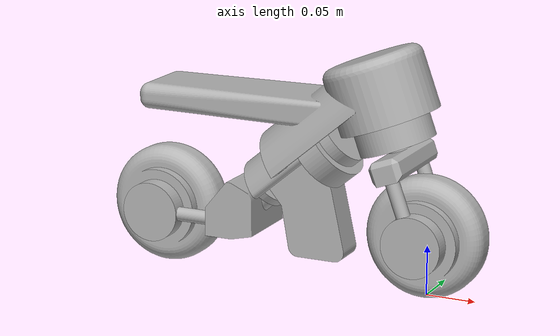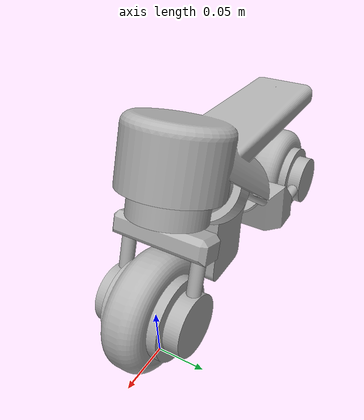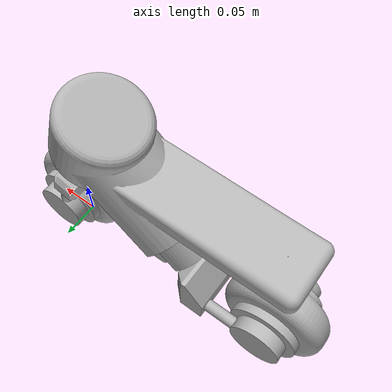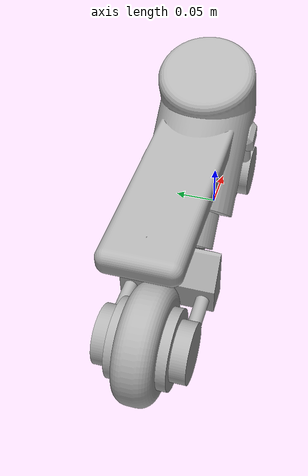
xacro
<?xml version="1.0" ?>
<robot name="motor_0419" xmlns:xacro="http://www.ros.org/wiki/xacro">

<xacro:include filename="$(find motor_0419_description)/urdf/materials.xacro" />
<xacro:include filename="$(find motor_0419_description)/urdf/motor_0419.trans" />
<xacro:include filename="$(find motor_0419_description)/urdf/motor_0419.gazebo" />
<link name="base_link">
  <inertial>
    <origin xyz="-0.2643804540847844 0.0 0.1883280566624717" rpy="0 0 0"/>
    <mass value="7.853981633974392e-07"/>
    <inertia ixx="0.0" iyy="0.0" izz="0.0" ixy="-0.0" iyz="0.0" ixz="0.0"/>
  </inertial>
  <visual>
    <origin xyz="0 0 0" rpy="0 0 0"/>
    <geometry>
      <mesh filename="package://motor_0419_description/meshes/base_link.stl" scale="0.001 0.001 0.001"/>
    </geometry>
    <material name="silver"/>
  </visual>
  <collision>
    <origin xyz="0 0 0" rpy="0 0 0"/>
    <geometry>
      <mesh filename="package://motor_0419_description/meshes/base_link.stl" scale="0.001 0.001 0.001"/>
    </geometry>
  </collision>
</link>

<link name="body_1">
  <inertial>
    <origin xyz="0.1471804534049348 -6.208601174446525e-05 -0.0006579735611396964" rpy="0 0 0"/>
    <mass value="0.3925093597966252"/>
    <inertia ixx="0.000434" iyy="0.002882" izz="0.002944" ixy="-1e-06" iyz="-1e-06" ixz="-0.000373"/>
  </inertial>
  <visual>
    <origin xyz="0.26438 -0.0 -0.187828" rpy="0 0 0"/>
    <geometry>
      <mesh filename="package://motor_0419_description/meshes/body_1.stl" scale="0.001 0.001 0.001"/>
    </geometry>
    <material name="silver"/>
  </visual>
  <collision>
    <origin xyz="0.26438 -0.0 -0.187828" rpy="0 0 0"/>
    <geometry>
      <mesh filename="package://motor_0419_description/meshes/body_1.stl" scale="0.001 0.001 0.001"/>
    </geometry>
  </collision>
</link>

<link name="motor_front_1">
  <inertial>
    <origin xyz="0.002738835734038929 0.0 -0.007526066318017166" rpy="0 0 0"/>
    <mass value="0.3948521329539542"/>
    <inertia ixx="0.00018" iyy="0.00017" izz="0.000247" ixy="0.0" iyz="-0.0" ixz="-2.8e-05"/>
  </inertial>
  <visual>
    <origin xyz="0.039613 -0.0 -0.168837" rpy="0 0 0"/>
    <geometry>
      <mesh filename="package://motor_0419_description/meshes/motor_front_1.stl" scale="0.001 0.001 0.001"/>
    </geometry>
    <material name="silver"/>
  </visual>
  <collision>
    <origin xyz="0.039613 -0.0 -0.168837" rpy="0 0 0"/>
    <geometry>
      <mesh filename="package://motor_0419_description/meshes/motor_front_1.stl" scale="0.001 0.001 0.001"/>
    </geometry>
  </collision>
</link>

<link name="Component15_1">
  <inertial>
    <origin xyz="0.0047462957723582964 0.0 -0.013040086657548577" rpy="0 0 0"/>
    <mass value="0.028707151993391324"/>
    <inertia ixx="2.3e-05" iyy="3e-06" izz="2.4e-05" ixy="-0.0" iyz="-0.0" ixz="-0.0"/>
  </inertial>
  <visual>
    <origin xyz="0.030721 -0.0 -0.144405" rpy="0 0 0"/>
    <geometry>
      <mesh filename="package://motor_0419_description/meshes/Component15_1.stl" scale="0.001 0.001 0.001"/>
    </geometry>
    <material name="silver"/>
  </visual>
  <collision>
    <origin xyz="0.030721 -0.0 -0.144405" rpy="0 0 0"/>
    <geometry>
      <mesh filename="package://motor_0419_description/meshes/Component15_1.stl" scale="0.001 0.001 0.001"/>
    </geometry>
  </collision>
</link>

<link name="Component7_1">
  <inertial>
    <origin xyz="0.012826244625287413 0.0 -0.035238526720528365" rpy="0 0 0"/>
    <mass value="0.0008835729338221301"/>
    <inertia ixx="0.0" iyy="0.0" izz="0.0" ixy="0.0" iyz="-0.0" ixz="0.0"/>
  </inertial>
  <visual>
    <origin xyz="0.025652 0.038 -0.130477" rpy="0 0 0"/>
    <geometry>
      <mesh filename="package://motor_0419_description/meshes/Component7_1.stl" scale="0.001 0.001 0.001"/>
    </geometry>
    <material name="silver"/>
  </visual>
  <collision>
    <origin xyz="0.025652 0.038 -0.130477" rpy="0 0 0"/>
    <geometry>
      <mesh filename="package://motor_0419_description/meshes/Component7_1.stl" scale="0.001 0.001 0.001"/>
    </geometry>
  </collision>
</link>

<link name="Component8_1">
  <inertial>
    <origin xyz="0.012826244625287411 -4.85722573273506e-17 -0.03523852672052845" rpy="0 0 0"/>
    <mass value="0.0008835729338221303"/>
    <inertia ixx="0.0" iyy="0.0" izz="0.0" ixy="0.0" iyz="-0.0" ixz="0.0"/>
  </inertial>
  <visual>
    <origin xyz="0.025652 -0.038 -0.130477" rpy="0 0 0"/>
    <geometry>
      <mesh filename="package://motor_0419_description/meshes/Component8_1.stl" scale="0.001 0.001 0.001"/>
    </geometry>
    <material name="silver"/>
  </visual>
  <collision>
    <origin xyz="0.025652 -0.038 -0.130477" rpy="0 0 0"/>
    <geometry>
      <mesh filename="package://motor_0419_description/meshes/Component8_1.stl" scale="0.001 0.001 0.001"/>
    </geometry>
  </collision>
</link>

<link name="Component21_1">
  <inertial>
    <origin xyz="0.0005748724370470563 6.938893903907228e-18 -0.001579449039853624" rpy="0 0 0"/>
    <mass value="0.01829359850162028"/>
    <inertia ixx="4e-06" iyy="8e-06" izz="5e-06" ixy="-0.0" iyz="0.0" ixz="-0.0"/>
  </inertial>
  <visual>
    <origin xyz="-0.0 0.038 -0.06" rpy="0 0 0"/>
    <geometry>
      <mesh filename="package://motor_0419_description/meshes/Component21_1.stl" scale="0.001 0.001 0.001"/>
    </geometry>
    <material name="silver"/>
  </visual>
  <collision>
    <origin xyz="-0.0 0.038 -0.06" rpy="0 0 0"/>
    <geometry>
      <mesh filename="package://motor_0419_description/meshes/Component21_1.stl" scale="0.001 0.001 0.001"/>
    </geometry>
  </collision>
</link>

<link name="Component22_1">
  <inertial>
    <origin xyz="0.0005748724370470528 6.938893903907228e-18 -0.001579449039853617" rpy="0 0 0"/>
    <mass value="0.018293598501620285"/>
    <inertia ixx="4e-06" iyy="8e-06" izz="5e-06" ixy="-0.0" iyz="0.0" ixz="-0.0"/>
  </inertial>
  <visual>
    <origin xyz="-0.0 -0.038 -0.06" rpy="0 0 0"/>
    <geometry>
      <mesh filename="package://motor_0419_description/meshes/Component22_1.stl" scale="0.001 0.001 0.001"/>
    </geometry>
    <material name="silver"/>
  </visual>
  <collision>
    <origin xyz="-0.0 -0.038 -0.06" rpy="0 0 0"/>
    <geometry>
      <mesh filename="package://motor_0419_description/meshes/Component22_1.stl" scale="0.001 0.001 0.001"/>
    </geometry>
  </collision>
</link>

<link name="front_wheel_1">
  <inertial>
    <origin xyz="-8.855704560963379e-18 -0.030000000000000002 1.3877787807814457e-17" rpy="0 0 0"/>
    <mass value="0.30810468964221666"/>
    <inertia ixx="0.000298" iyy="0.00046" izz="0.000298" ixy="-0.0" iyz="0.0" ixz="0.0"/>
  </inertial>
  <visual>
    <origin xyz="-0.0 -0.03 -0.06" rpy="0 0 0"/>
    <geometry>
      <mesh filename="package://motor_0419_description/meshes/front_wheel_1.stl" scale="0.001 0.001 0.001"/>
    </geometry>
    <material name="silver"/>
  </visual>
  <collision>
    <origin xyz="-0.0 -0.03 -0.06" rpy="0 0 0"/>
    <geometry>
      <mesh filename="package://motor_0419_description/meshes/front_wheel_1.stl" scale="0.001 0.001 0.001"/>
    </geometry>
  </collision>
</link>

<link name="weight_shell_1">
  <inertial>
    <origin xyz="-0.01833489996079446 0.041546025220520574 -0.001470528410080843" rpy="0 0 0"/>
    <mass value="0.03425604041375709"/>
    <inertia ixx="2.6e-05" iyy="1.9e-05" izz="2.5e-05" ixy="0.0" iyz="-0.0" ixz="-5e-06"/>
  </inertial>
  <visual>
    <origin xyz="0.138424 0.041546 -0.119052" rpy="0 0 0"/>
    <geometry>
      <mesh filename="package://motor_0419_description/meshes/weight_shell_1.stl" scale="0.001 0.001 0.001"/>
    </geometry>
    <material name="silver"/>
  </visual>
  <collision>
    <origin xyz="0.138424 0.041546 -0.119052" rpy="0 0 0"/>
    <geometry>
      <mesh filename="package://motor_0419_description/meshes/weight_shell_1.stl" scale="0.001 0.001 0.001"/>
    </geometry>
  </collision>
</link>

<link name="motor_back_1">
  <inertial>
    <origin xyz="0.012633058157315635 7.77390917334006e-18 0.01060057412634735" rpy="0 0 0"/>
    <mass value="0.39485213295395405"/>
    <inertia ixx="0.000221" iyy="0.00017" izz="0.000206" ixy="0.0" iyz="-0.0" ixz="4.3e-05"/>
  </inertial>
  <visual>
    <origin xyz="0.115865 -0.0 -0.127171" rpy="0 0 0"/>
    <geometry>
      <mesh filename="package://motor_0419_description/meshes/motor_back_1.stl" scale="0.001 0.001 0.001"/>
    </geometry>
    <material name="silver"/>
  </visual>
  <collision>
    <origin xyz="0.115865 -0.0 -0.127171" rpy="0 0 0"/>
    <geometry>
      <mesh filename="package://motor_0419_description/meshes/motor_back_1.stl" scale="0.001 0.001 0.001"/>
    </geometry>
  </collision>
</link>

<link name="weight_1">
  <inertial>
    <origin xyz="-0.0005088231683351985 1.830746664977666e-18 -0.057373356889244886" rpy="0 0 0"/>
    <mass value="1.2419723591084944"/>
    <inertia ixx="0.000958" iyy="0.001235" izz="0.000486" ixy="0.0" iyz="0.0" ixz="0.000144"/>
  </inertial>
  <visual>
    <origin xyz="0.117014 -0.0 -0.126207" rpy="0 0 0"/>
    <geometry>
      <mesh filename="package://motor_0419_description/meshes/weight_1.stl" scale="0.001 0.001 0.001"/>
    </geometry>
    <material name="silver"/>
  </visual>
  <collision>
    <origin xyz="0.117014 -0.0 -0.126207" rpy="0 0 0"/>
    <geometry>
      <mesh filename="package://motor_0419_description/meshes/weight_1.stl" scale="0.001 0.001 0.001"/>
    </geometry>
  </collision>
</link>

<link name="bone_1">
  <inertial>
    <origin xyz="-0.0032816521132274235 0.0 0.015670028427721583" rpy="0 0 0"/>
    <mass value="0.002605452444801828"/>
    <inertia ixx="1e-06" iyy="2e-06" izz="1e-06" ixy="0.0" iyz="-0.0" ixz="-1e-06"/>
  </inertial>
  <visual>
    <origin xyz="0.150498 -0.0 -0.079659" rpy="0 0 0"/>
    <geometry>
      <mesh filename="package://motor_0419_description/meshes/bone_1.stl" scale="0.001 0.001 0.001"/>
    </geometry>
    <material name="silver"/>
  </visual>
  <collision>
    <origin xyz="0.150498 -0.0 -0.079659" rpy="0 0 0"/>
    <geometry>
      <mesh filename="package://motor_0419_description/meshes/bone_1.stl" scale="0.001 0.001 0.001"/>
    </geometry>
  </collision>
</link>

<link name="Component13_1">
  <inertial>
    <origin xyz="-0.004854721414989244 -5.274585027369104e-10 0.0029938954157708586" rpy="0 0 0"/>
    <mass value="0.080186763710499"/>
    <inertia ixx="8.2e-05" iyy="2.8e-05" izz="7.4e-05" ixy="-0.0" iyz="0.0" ixz="-2e-06"/>
  </inertial>
  <visual>
    <origin xyz="0.188256 -0.0 -0.066428" rpy="0 0 0"/>
    <geometry>
      <mesh filename="package://motor_0419_description/meshes/Component13_1.stl" scale="0.001 0.001 0.001"/>
    </geometry>
    <material name="silver"/>
  </visual>
  <collision>
    <origin xyz="0.188256 -0.0 -0.066428" rpy="0 0 0"/>
    <geometry>
      <mesh filename="package://motor_0419_description/meshes/Component13_1.stl" scale="0.001 0.001 0.001"/>
    </geometry>
  </collision>
</link>

<link name="Component4_1">
  <inertial>
    <origin xyz="-0.030000494709475384 -3.469446951953614e-17 2.7755575615628914e-17" rpy="0 0 0"/>
    <mass value="0.0007068583470577029"/>
    <inertia ixx="0.0" iyy="0.0" izz="0.0" ixy="0.0" iyz="0.0" ixz="0.0"/>
  </inertial>
  <visual>
    <origin xyz="0.202916 0.038 -0.06" rpy="0 0 0"/>
    <geometry>
      <mesh filename="package://motor_0419_description/meshes/Component4_1.stl" scale="0.001 0.001 0.001"/>
    </geometry>
    <material name="silver"/>
  </visual>
  <collision>
    <origin xyz="0.202916 0.038 -0.06" rpy="0 0 0"/>
    <geometry>
      <mesh filename="package://motor_0419_description/meshes/Component4_1.stl" scale="0.001 0.001 0.001"/>
    </geometry>
  </collision>
</link>

<link name="Component3_1">
  <inertial>
    <origin xyz="-0.030000494709475717 4.163336342344337e-17 1.3877787807814457e-16" rpy="0 0 0"/>
    <mass value="0.0007068583470577026"/>
    <inertia ixx="0.0" iyy="0.0" izz="0.0" ixy="-0.0" iyz="0.0" ixz="-0.0"/>
  </inertial>
  <visual>
    <origin xyz="0.202916 -0.038 -0.06" rpy="0 0 0"/>
    <geometry>
      <mesh filename="package://motor_0419_description/meshes/Component3_1.stl" scale="0.001 0.001 0.001"/>
    </geometry>
    <material name="silver"/>
  </visual>
  <collision>
    <origin xyz="0.202916 -0.038 -0.06" rpy="0 0 0"/>
    <geometry>
      <mesh filename="package://motor_0419_description/meshes/Component3_1.stl" scale="0.001 0.001 0.001"/>
    </geometry>
  </collision>
</link>

<link name="Component11_1">
  <inertial>
    <origin xyz="-0.018143698328590363 6.938893903907228e-18 3.3639757646142243e-14" rpy="0 0 0"/>
    <mass value="0.01947700870722573"/>
    <inertia ixx="5e-06" iyy="9e-06" izz="4e-06" ixy="-0.0" iyz="0.0" ixz="-0.0"/>
  </inertial>
  <visual>
    <origin xyz="0.262916 0.038 -0.06" rpy="0 0 0"/>
    <geometry>
      <mesh filename="package://motor_0419_description/meshes/Component11_1.stl" scale="0.001 0.001 0.001"/>
    </geometry>
    <material name="silver"/>
  </visual>
  <collision>
    <origin xyz="0.262916 0.038 -0.06" rpy="0 0 0"/>
    <geometry>
      <mesh filename="package://motor_0419_description/meshes/Component11_1.stl" scale="0.001 0.001 0.001"/>
    </geometry>
  </collision>
</link>

<link name="Component12_1">
  <inertial>
    <origin xyz="-0.018143698328590363 -6.938893903907228e-18 3.3639757646142243e-14" rpy="0 0 0"/>
    <mass value="0.01947700870722573"/>
    <inertia ixx="5e-06" iyy="9e-06" izz="4e-06" ixy="0.0" iyz="-0.0" ixz="-0.0"/>
  </inertial>
  <visual>
    <origin xyz="0.262916 -0.038 -0.06" rpy="0 0 0"/>
    <geometry>
      <mesh filename="package://motor_0419_description/meshes/Component12_1.stl" scale="0.001 0.001 0.001"/>
    </geometry>
    <material name="silver"/>
  </visual>
  <collision>
    <origin xyz="0.262916 -0.038 -0.06" rpy="0 0 0"/>
    <geometry>
      <mesh filename="package://motor_0419_description/meshes/Component12_1.stl" scale="0.001 0.001 0.001"/>
    </geometry>
  </collision>
</link>

<link name="back_wheel_1">
  <inertial>
    <origin xyz="0.0 0.030000000000000002 0.0" rpy="0 0 0"/>
    <mass value="2.315920250477329"/>
    <inertia ixx="0.002241" iyy="0.003454" izz="0.002241" ixy="0.0" iyz="0.0" ixz="0.0"/>
  </inertial>
  <visual>
    <origin xyz="0.28 0.03 -0.06" rpy="0 0 0"/>
    <geometry>
      <mesh filename="package://motor_0419_description/meshes/back_wheel_1.stl" scale="0.001 0.001 0.001"/>
    </geometry>
    <material name="silver"/>
  </visual>
  <collision>
    <origin xyz="0.28 0.03 -0.06" rpy="0 0 0"/>
    <geometry>
      <mesh filename="package://motor_0419_description/meshes/back_wheel_1.stl" scale="0.001 0.001 0.001"/>
    </geometry>
  </collision>
</link>

<joint name="Rigid 1" type="fixed">
  <origin xyz="-0.26438 0.0 0.187828" rpy="0 0 0"/>
  <parent link="base_link"/>
  <child link="body_1"/>
</joint>

<joint name="Rigid 2" type="fixed">
  <origin xyz="0.224767 0.0 -0.018991" rpy="0 0 0"/>
  <parent link="body_1"/>
  <child link="motor_front_1"/>
</joint>

<joint name="front_fork" type="continuous">
  <origin xyz="0.008892 0.0 -0.024432" rpy="0 0 0"/>
  <parent link="motor_front_1"/>
  <child link="Component15_1"/>
  <axis xyz="-0.34202 0.0 0.939693"/>
</joint>

<joint name="Rigid 4" type="fixed">
  <origin xyz="0.005069 -0.038 -0.013928" rpy="0 0 0"/>
  <parent link="Component15_1"/>
  <child link="Component7_1"/>
</joint>

<joint name="Rigid 5" type="fixed">
  <origin xyz="0.005069 0.038 -0.013928" rpy="0 0 0"/>
  <parent link="Component15_1"/>
  <child link="Component8_1"/>
</joint>

<joint name="Rigid 6" type="fixed">
  <origin xyz="0.025652 0.0 -0.070477" rpy="0 0 0"/>
  <parent link="Component7_1"/>
  <child link="Component21_1"/>
</joint>

<joint name="Rigid 7" type="fixed">
  <origin xyz="0.025652 0.0 -0.070477" rpy="0 0 0"/>
  <parent link="Component8_1"/>
  <child link="Component22_1"/>
</joint>

<joint name="front_wh" type="continuous">
  <origin xyz="0.0 -0.008 0.0" rpy="0 0 0"/>
  <parent link="Component22_1"/>
  <child link="front_wheel_1"/>
  <axis xyz="0.0 -1.0 0.0"/>
</joint>

<joint name="Rigid 9" type="fixed">
  <origin xyz="0.125956 -0.041546 -0.068776" rpy="0 0 0"/>
  <parent link="body_1"/>
  <child link="weight_shell_1"/>
</joint>

<joint name="Rigid 10" type="fixed">
  <origin xyz="0.022559 0.041546 0.008119" rpy="0 0 0"/>
  <parent link="weight_shell_1"/>
  <child link="motor_back_1"/>
</joint>

<joint name="back_fork" type="revolute">
  <origin xyz="-0.001149 0.0 -0.000964" rpy="0 0 0"/>
  <parent link="motor_back_1"/>
  <child link="weight_1"/>
  <axis xyz="-0.766044 0.0 -0.642788"/>
  <limit upper="1.047198" lower="-1.047198" effort="100" velocity="100"/>
</joint>

<joint name="Rigid 12" type="fixed">
  <origin xyz="-0.033484 0.0 -0.046548" rpy="0 0 0"/>
  <parent link="weight_1"/>
  <child link="bone_1"/>
</joint>

<joint name="Rigid 13" type="fixed">
  <origin xyz="-0.037758 0.0 -0.013231" rpy="0 0 0"/>
  <parent link="bone_1"/>
  <child link="Component13_1"/>
</joint>

<joint name="Rigid 14" type="fixed">
  <origin xyz="-0.01466 -0.038 -0.006428" rpy="0 0 0"/>
  <parent link="Component13_1"/>
  <child link="Component4_1"/>
</joint>

<joint name="Rigid 15" type="fixed">
  <origin xyz="-0.01466 0.038 -0.006428" rpy="0 0 0"/>
  <parent link="Component13_1"/>
  <child link="Component3_1"/>
</joint>

<joint name="Rigid 16" type="fixed">
  <origin xyz="-0.06 0.0 0.0" rpy="0 0 0"/>
  <parent link="Component4_1"/>
  <child link="Component11_1"/>
</joint>

<joint name="Rigid 17" type="fixed">
  <origin xyz="-0.06 0.0 0.0" rpy="0 0 0"/>
  <parent link="Component3_1"/>
  <child link="Component12_1"/>
</joint>

<joint name="back_wh" type="continuous">
  <origin xyz="-0.017084 0.008 0.0" rpy="0 0 0"/>
  <parent link="Component11_1"/>
  <child link="back_wheel_1"/>
  <axis xyz="0.0 -1.0 0.0"/>
</joint>

</robot>

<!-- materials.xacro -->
<robot name="motor_0419" xmlns:xacro="http://www.ros.org/wiki/xacro" >

<material name="silver">
  <color rgba="0.700 0.700 0.700 1.000"/>
</material>

</robot>

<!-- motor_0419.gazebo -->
<robot name="motor_0419" xmlns:xacro="http://www.ros.org/wiki/xacro" >

<xacro:property name="body_color" value="Gazebo/Silver" />

<gazebo>
  <plugin name="control" filename="libgazebo_ros_control.so"/>
</gazebo>
<gazebo reference="base_link">
  <material>${body_color}</material>
  <mu1>0.2</mu1>
  <mu2>0.2</mu2>
  <selfCollide>true</selfCollide>
  <gravity>true</gravity>
</gazebo>

<gazebo reference="body_1">
  <material>${body_color}</material>
  <mu1>0.2</mu1>
  <mu2>0.2</mu2>
  <selfCollide>true</selfCollide>
</gazebo>

<gazebo reference="motor_front_1">
  <material>${body_color}</material>
  <mu1>0.2</mu1>
  <mu2>0.2</mu2>
  <selfCollide>true</selfCollide>
</gazebo>

<gazebo reference="Component15_1">
  <material>${body_color}</material>
  <mu1>0.2</mu1>
  <mu2>0.2</mu2>
  <selfCollide>true</selfCollide>
</gazebo>

<gazebo reference="Component7_1">
  <material>${body_color}</material>
  <mu1>0.2</mu1>
  <mu2>0.2</mu2>
  <selfCollide>true</selfCollide>
</gazebo>

<gazebo reference="Component8_1">
  <material>${body_color}</material>
  <mu1>0.2</mu1>
  <mu2>0.2</mu2>
  <selfCollide>true</selfCollide>
</gazebo>

<gazebo reference="Component21_1">
  <material>${body_color}</material>
  <mu1>0.2</mu1>
  <mu2>0.2</mu2>
  <selfCollide>true</selfCollide>
</gazebo>

<gazebo reference="Component22_1">
  <material>${body_color}</material>
  <mu1>0.2</mu1>
  <mu2>0.2</mu2>
  <selfCollide>true</selfCollide>
</gazebo>

<gazebo reference="front_wheel_1">
  <material>${body_color}</material>
  <mu1>0.2</mu1>
  <mu2>0.2</mu2>
  <selfCollide>true</selfCollide>
</gazebo>

<gazebo reference="weight_shell_1">
  <material>${body_color}</material>
  <mu1>0.2</mu1>
  <mu2>0.2</mu2>
  <selfCollide>true</selfCollide>
</gazebo>

<gazebo reference="motor_back_1">
  <material>${body_color}</material>
  <mu1>0.2</mu1>
  <mu2>0.2</mu2>
  <selfCollide>true</selfCollide>
</gazebo>

<gazebo reference="weight_1">
  <material>${body_color}</material>
  <mu1>0.2</mu1>
  <mu2>0.2</mu2>
  <selfCollide>true</selfCollide>
</gazebo>

<gazebo reference="bone_1">
  <material>${body_color}</material>
  <mu1>0.2</mu1>
  <mu2>0.2</mu2>
  <selfCollide>true</selfCollide>
</gazebo>

<gazebo reference="Component13_1">
  <material>${body_color}</material>
  <mu1>0.2</mu1>
  <mu2>0.2</mu2>
  <selfCollide>true</selfCollide>
</gazebo>

<gazebo reference="Component4_1">
  <material>${body_color}</material>
  <mu1>0.2</mu1>
  <mu2>0.2</mu2>
  <selfCollide>true</selfCollide>
</gazebo>

<gazebo reference="Component3_1">
  <material>${body_color}</material>
  <mu1>0.2</mu1>
  <mu2>0.2</mu2>
  <selfCollide>true</selfCollide>
</gazebo>

<gazebo reference="Component12_1">
  <material>${body_color}</material>
  <mu1>0.2</mu1>
  <mu2>0.2</mu2>
  <selfCollide>true</selfCollide>
</gazebo>

<gazebo reference="Component11_1">
  <material>${body_color}</material>
  <mu1>0.2</mu1>
  <mu2>0.2</mu2>
  <selfCollide>true</selfCollide>
</gazebo>

<gazebo reference="back_wheel_1">
  <material>${body_color}</material>
  <mu1>0.2</mu1>
  <mu2>0.2</mu2>
  <selfCollide>true</selfCollide>
</gazebo>

</robot>
